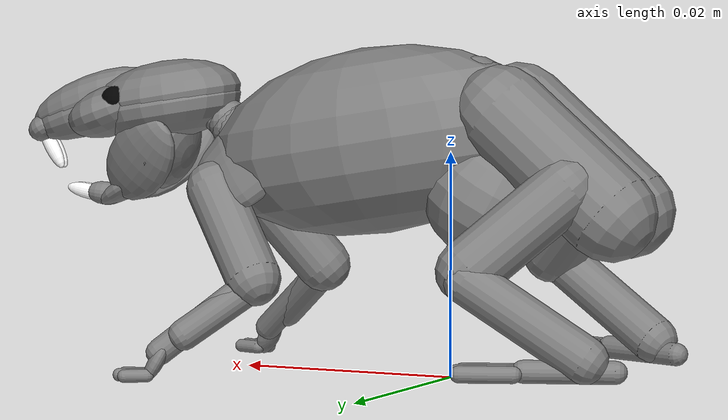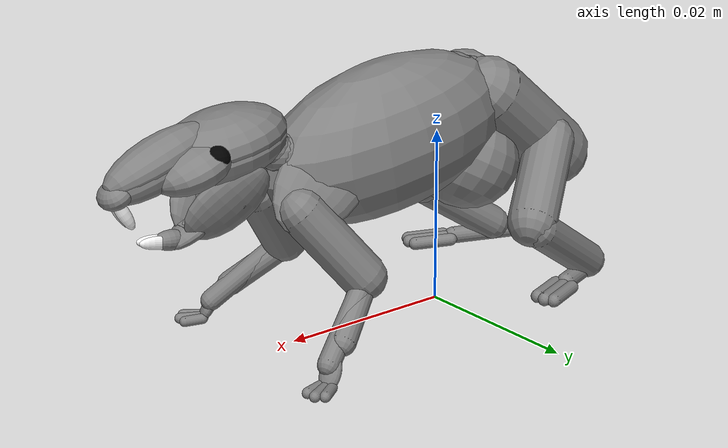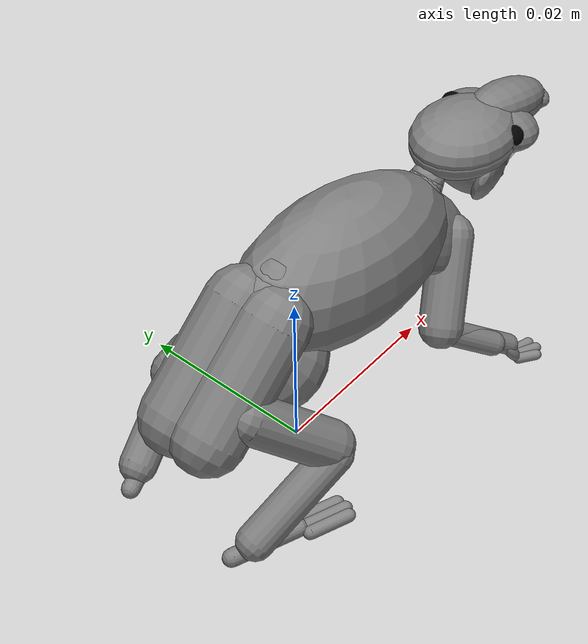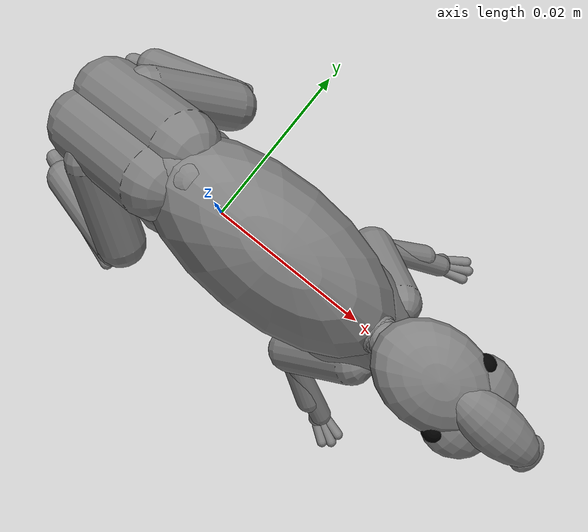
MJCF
<mujoco model="mouse">
  <compiler angle="radian"/>
  <size njmax="8000" nconmax="4000"/>
  <default>
    <!-- Scaling Factor S = 0.32 -->
    <!-- armature scales by S^5 = 0.32^5 = 0.003355 -->
    <!-- damping & stiffness scale by S^3 = 0.32^3 = 0.032768 -->
    <joint limited="true" solreflimit="0.01 1" solimplimit="0.99 0.9999 0" armature="2.01e-09" damping="3.28e-05"/>
    <geom friction="0.7 0.005 0.0001" solref="0.005 1"/>
    <site group="3" rgba="0 0 1 1"/>
    <general ctrllimited="true" ctrlrange="-1 1" gainprm="0.01"/>
    <default class="bone">
      <geom contype="0" conaffinity="0" group="0" rgba="0.5 0.5 0.5 1" density="1100.0"/>
    </default>
    <default class="collision">
      <geom contype="1" conaffinity="1" condim="1" group="2"/>
      <default class="collision_primitive">
        <geom type="capsule" group="2" rgba="0.5 0.5 0.5 1" density="500.0"/>
        <default class="collision_primitive_paw">
          <geom condim="3" priority="1" rgba="0.5 0.5 0.5 1" friction="1.5 0.005 0.0001"/>
        </default>
        <default class="nonself_collision_primitive">
          <geom conaffinity="0"/>
        </default>
      </default>
    </default>
    <default class="lumbar">
      <joint group="3" pos="0.00096 0 -0.00096" armature="3.36e-07" damping="0.000983"/>
      <general gainprm="0.15"/>
      <default class="lumbar_extend">
        <joint stiffness="0.000655" range="-0.5235987755982988 0.7853981633974483"/>
        <tendon range="-1 1"/>
        <general gainprm="0.4"/>
      </default>
      <default class="lumbar_bend">
        <joint stiffness="0.000983" range="-0.5235987755982988 0.5235987755982988"/>
        <tendon range="-1 1"/>
      </default>
      <default class="lumbar_twist">
        <joint stiffness="0.000983" range="-0.5235987755982988 0.5235987755982988"/>
        <tendon range="-1 1"/>
      </default>
    </default>
    <default class="cervical">
      <joint group="3" pos="-0.0064 0 -0.016" stiffness="0.032768" armature="3.36e-05" damping="0.032768"/>
      <default class="cervical_extend">
        <joint range="-0.4072434921320102 0.6108652381980153"/>
        <tendon range="-1 1"/>
        <general gainprm="2.5"/>
      </default>
      <default class="cervical_bend">
        <joint range="-0.6108652381980153 0.6108652381980153"/>
        <tendon range="-1 1"/>
        <general gainprm="2.5"/>
      </default>
      <default class="cervical_twist">
        <joint range="-0.6108652381980153 0.6108652381980153"/>
        <tendon range="-1 1"/>
        <general gainprm="2.5"/>
      </default>
    </default>
    <default class="atlas">
      <joint axis="0 -1 0" stiffness="6.55e-05" range="-0.08726646259971647 0.7853981633974483" damping="6.55e-05"/>
      <general gainprm="0.025"/>
    </default>
    <default class="mandible">
      <joint stiffness="6.55e-05" range="-0.296705972839036 0.2617993877991494" springref="-0.314159265359" damping="6.55e-05"/>
      <general gainprm="0.025"/>
    </default>
    <default class="caudal">
      <joint group="3" stiffness="3.28e-07" damping="6.55e-05"/>
      <general gainprm="0.005"/>
      <default class="caudal_extend">
        <joint range="-0.08726646259971647 0.08726646259971647"/>
        <tendon range="-0.05 0.05"/>
      </default>
      <default class="caudal_bend">
        <joint range="-0.08726646259971647 0.08726646259971647"/>
        <tendon range="-0.2 0.2"/>
      </default>
    </default>
    <default class="hip">
      <joint armature="3.36e-07" damping="0.000655"/>
      <general gainprm="0.2"/>
      <default class="hip_supinate">
        <joint range="-0.6981317007977318 0.5235987755982988"/>
      </default>
      <default class="hip_abduct">
        <joint range="-0.5235987755982988 1.047197551196598"/>
      </default>
      <default class="hip_extend">
        <joint range="-1.570796326794897 1.047197551196598"/>
        <general gainprm="0.3"/>
      </default>
    </default>
    <default class="knee">
      <joint range="-1.221730476396031 1.53588974175501" damping="0.000164"/>
      <general gainprm="0.2"/>
    </default>
    <default class="ankle">
      <joint range="-0.1396263401595464 1.396263401595464" damping="9.83e-05"/>
      <general gainprm="0.2"/>
    </default>
    <default class="toe">
      <joint range="0 0.8726646259971648" damping="3.28e-05"/>
      <general gainprm="0.025"/>
    </default>
    <default class="scapula">
      <joint damping="0.000164"/>
      <general gainprm="0.25"/>
      <default class="scapula_supinate">
        <joint pos="0 0.0016 0" range="-0.0174532925199433 0.1745329251994329"/>
      </default>
      <default class="scapula_abduct">
        <joint pos="0 0.0016 -0.0032" range="-0.2617993877991494 0.2617993877991494"/>
      </default>
      <default class="scapula_extend">
        <joint pos="0 0 0" range="-0.03490658503988659 0.03490658503988659"/>
        <general gainprm="0.25"/>
      </default>
    </default>
    <default class="shoulder">
      <joint range="-1.308996938995747 0.8726646259971648" damping="0.000164"/>
      <general gainprm="0.15"/>
    </default>
    <default class="shoulder_sup">
      <joint range="-0.05235987755982989 1.134464013796314" damping="0.000164"/>
      <general gainprm="0.15"/>
    </default>
    <default class="elbow">
      <joint range="-1.308996938995747 0.6981317007977318" damping="9.83e-05"/>
      <general gainprm="0.15"/>
    </default>
    <default class="wrist">
      <joint range="-0.3490658503988659 2.094395102393195" damping="6.55e-05"/>
      <general gainprm="0.05"/>
    </default>
    <default class="finger">
      <joint range="0 1.570796326794897" damping="6.55e-05"/>
      <general gainprm="0.025"/>
    </default>
    <default class="sensor">
      <site group="4"/>
    </default>
  </default>
  <visual>
    <quality shadowsize="2048"/>
    <global offwidth="1024"/>
    <global offheight="1152"/>
  </visual>
  <statistic meansize="0.00096"/>
  <asset>
  </asset>
  <worldbody>
    <camera name="close_fixed" mode="fixed" pos="0.096 -0.096 0.1024" xyaxes="1 1 0 -1 1 2"/>
    <camera name="close_profile_aligned" mode="targetbody" pos="0.096 -0.096 0.08" target="torso"/>
    <body name="torso" pos="0.009918 6.587e-08 0.020828">
      <light name="tracking_light" mode="trackcom" pos="0 0 0.96"/>
      <camera name="back" mode="trackcom" pos="-0.32 0 0.16" xyaxes="0 -1 0 1 0 2"/>
      <camera name="side" mode="trackcom" pos="0 -0.32 0.16" xyaxes="1 0 0 0 1 2"/>
      <camera name="top" mode="trackcom" fovy="100.0" pos="0 0 0.32" zaxis="0 -0.2 1"/>
      <camera name="close_profile" mode="trackcom" pos="0.096 -0.096 0.08" xyaxes="1 1 0 -1 1 2"/>
      <camera name="close_side" mode="trackcom" pos="0 -0.096 0.08" xyaxes="0 0 1 0 1 2"/>
      <camera name="examples" mode="trackcom" pos="-0.16 0 0.048" xyaxes="0 -1 0 1 0 2"/>
      <camera name="stretch_examples" mode="trackcom" pos="0.16 0 0.016" xyaxes="0 1 0 -1 0 4"/>
      <geom name="collision_torso" class="nonself_collision_primitive" type="ellipsoid" size="0.016 0.00768 0.00832" density="468.251260009" pos="-0.002624 0 0" euler="0 0.1745329251994329 0"/>
      <body name="vertebra_1" pos="-0.006137 -6.017e-08 0.00539">
        <geom name="vertebra_1_collision" class="nonself_collision_primitive" type="sphere" size="0.0032" pos="0 0 -0.0005248"/>
        <body name="vertebra_2" pos="-0.001801 8.303e-07 0.00017">
          <geom name="vertebra_2_collision" class="nonself_collision_primitive" type="sphere" size="0.0032" pos="0 0 -0.0005248"/>
          <body name="vertebra_3" pos="-0.002085 -3.331e-06 -3.029e-05">
            <geom name="vertebra_3_collision" class="nonself_collision_primitive" type="sphere" size="0.0032" pos="0 0 -0.0005248"/>
            <body name="vertebra_4" pos="-0.002168 2.798e-06 -0.000415">
              <geom name="vertebra_4_collision" class="nonself_collision_primitive" type="sphere" size="0.0032" pos="0 0 -0.0005248"/>
              <body name="vertebra_5" pos="-0.002204 -1.985e-06 -0.000799">
                <geom name="vertebra_5_collision" class="nonself_collision_primitive" type="sphere" size="0.0032" pos="0 0 -0.0005248"/>
                <body name="vertebra_6" pos="-0.001979 1.681e-06 -0.001165">
                  <geom name="vertebra_6_collision" class="nonself_collision_primitive" type="sphere" size="0.0032" pos="0 0 -0.0005248"/>
                  <joint name="vertebra_6_twist" class="lumbar_twist" axis="1 0 0"/>
                  <body name="pelvis" pos="-0.004182 1.124e-06 -0.002598">
                    <geom name="collision_pelvis_L" class="nonself_collision_primitive" size="0.00416 0.00672 0" density="1548.57736929" pos="-0.0002624 0.002099 -0.001836" euler="0 0.8726646259971648 0"/>
                    <geom name="collision_pelvis_R" class="nonself_collision_primitive" size="0.00416 0.00672 0" density="1548.57736929" pos="-0.0002624 -0.002099 -0.001836" euler="0 0.8726646259971648 0"/>
                    <geom name="collision_pelvis_gut" class="nonself_collision_primitive" type="ellipsoid" size="0.0064 0.0064 0.00576" density="1548.57736929" pos="0.00656 0 -0.005248" euler="0 -0.5235987755982988 0"/>
                    <site name="hip_L" size="0.000704" pos="-0.001539 0.003677 -0.003164"/>
                    <site name="hip_R" size="0.000704" pos="-0.001539 -0.003677 -0.003164"/>
                    <body name="upper_leg_L" pos="-0.001539 0.003677 -0.003164">
                      <joint name="hip_L_supinate" class="hip_supinate" axis="-0 -0 1"/>
                      <joint name="hip_L_abduct" class="hip_abduct" axis="1 -0 -0"/>
                      <joint name="hip_L_extend" class="hip_extend" axis="0 1 0"/>
                      <site name="knee_L" type="cylinder" size="0.000192 0.00128" pos="0.004935 0.005593 -0.008225" zaxis="0 1 0"/>
                      <geom name="upper_leg_L0_collision" class="collision_primitive" size="0.002797 0.005595" density="1561.75550556" pos="0.002752 0.003441 -0.004129" euler="0.6108652381980153 -0.6981317007977318 0"/>
                      <body name="lower_leg_L" pos="0.004935 0.005593 -0.008225">
                        <joint name="knee_L" class="knee" axis="0.5 -1 0"/>
                        <site name="ankle_L" type="cylinder" size="0.000192 0.000832" pos="-0.010336 -0.001512 -0.007059" zaxis="0 1 0"/>
                        <body name="foot_L" pos="-0.010336 -0.001512 -0.007059">
                          <joint name="ankle_L" class="ankle" axis="-0.3 1 0"/>
                          <geom name="foot_L_collision" class="collision_primitive_paw" size="0.001027 0.003962" density="2041.15978228" pos="0.002647 0.000722 -0.000722" euler="1.570796326794897 -1.221730476396031 0"/>
                          <site name="toe_L" type="cylinder" size="0.000192 0.0016" pos="0.006751 0.002436 -0.00088" zaxis="0 1 0"/>
                          <body name="toe_L" pos="0.006751 0.002436 -0.00088">
                            <joint name="toe_L" class="toe" axis="0 1 0"/>
                            <geom name="toe_L0_collision" class="collision_primitive_paw" size="0.000762 0.002321" pos="0.002718 -0.000271 0" euler="1.570796326794897 -1.221730476396031 0"/>
                            <geom name="toe_L1_collision" class="collision_primitive_paw" size="0.000762 0.002486" pos="0.002582 0.000815 0" euler="1.570796326794897 -1.221730476396031 0"/>
                            <geom name="toe_L2_collision" class="collision_primitive_paw" size="0.000762 0.002321" pos="0.002175 0.001767 0" euler="1.570796326794897 -1.221730476396031 0"/>
                            <site name="sole_L" class="sensor" type="box" size="0.00192 0.00128 0.00064" pos="0.002624 0.000787 -0.000524" euler="0 0 0.3490658503988659"/>
                          </body>
                        </body>
                        <geom name="lower_leg_L_collision" class="collision_primitive" size="0.002098 0.006154" density="1302.86687267" pos="-0.003924 3.919e-05 -0.003429" quat="0.5843939876140521 0.278581552273902 0.3900453953818352 0.6547828460754284"/>
                      </body>
                    </body>
                    <body name="upper_leg_R" pos="-0.001539 -0.003677 -0.003164">
                      <joint name="hip_R_supinate" class="hip_supinate" axis="0 0 -1"/>
                      <joint name="hip_R_abduct" class="hip_abduct" axis="-1 0 0"/>
                      <joint name="hip_R_extend" class="hip_extend" axis="0 1 0"/>
                      <site name="knee_R" type="cylinder" size="0.000192 0.00128" pos="0.004935 -0.005593 -0.008225" zaxis="0 1 0"/>
                      <geom name="upper_leg_R0_collision" class="collision_primitive" size="0.002797 0.005595" density="1561.75550556" pos="0.002752 -0.003441 -0.004129" euler="-0.6108652381980153 -0.6981317007977318 0"/>
                      <body name="lower_leg_R" pos="0.004935 -0.005593 -0.008225">
                        <joint name="knee_R" class="knee" axis="-0.5 -1 0"/>
                        <site name="ankle_R" type="cylinder" size="0.000192 0.000832" pos="-0.010336 0.001512 -0.007059" zaxis="0 1 0"/>
                        <body name="foot_R" pos="-0.010336 0.001512 -0.007059">
                          <joint name="ankle_R" class="ankle" axis="0.3 1 0"/>
                          <geom name="foot_R_collision" class="collision_primitive_paw" size="0.001027 0.003962" density="2041.15978228" pos="0.002647 -0.000722 -0.000722" euler="1.570796326794897 1.221730476396031 0"/>
                          <site name="toe_R" type="cylinder" size="0.000192 0.0016" pos="0.006751 -0.002436 -0.00088" zaxis="0 1 0"/>
                          <body name="toe_R" pos="0.006751 -0.002436 -0.00088">
                            <joint name="toe_R" class="toe" axis="0 1 0"/>
                            <geom name="toe_R0_collision" class="collision_primitive_paw" size="0.000762 0.002321" pos="0.002718 0.000271 0" euler="1.570796326794897 1.221730476396031 0"/>
                            <geom name="toe_R1_collision" class="collision_primitive_paw" size="0.000762 0.002486" pos="0.002582 -0.000815 0" euler="1.570796326794897 1.221730476396031 0"/>
                            <geom name="toe_R2_collision" class="collision_primitive_paw" size="0.000762 0.002321" pos="0.002175 -0.001767 0" euler="1.570796326794897 1.221730476396031 0"/>
                            <site name="sole_R" class="sensor" type="box" size="0.00192 0.00128 0.00064" pos="0.002624 -0.000787 -0.000524" euler="0 0 -0.3490658503988659"/>
                          </body>
                        </body>
                        <geom name="lower_leg_R_collision" class="collision_primitive" size="0.002098 0.006154" density="1302.86687267" pos="-0.003849 -5.17e-05 -0.003383" quat="0.6564315036111004 0.3901417719765998 0.2779576926818845 0.5827749135856758"/>
                      </body>
                    </body>
                    <body name="vertebra_C1" pos="-0.005052 0 -0.003802">
                      <body name="vertebra_C2" pos="-0.00124 0 -0.001352">
                        <body name="vertebra_C3" pos="-0.001095 0 -0.001364">
                          <body name="vertebra_C4" pos="-0.001046 0 -0.001413">
                            <body name="vertebra_C5" pos="-0.001016 0 -0.001462">
                              <body name="vertebra_C6" pos="-0.000998 0 -0.001568">
                                <body name="vertebra_C7" pos="-0.001029 0 -0.001806">
                                  <body name="vertebra_C8" pos="-0.001102 0 -0.001765">
                                    <body name="vertebra_C9" pos="-0.001371 0 -0.001636">
                                      <body name="vertebra_C10" pos="-0.001555 0 -0.001459">
                                        <body name="vertebra_C11" pos="-0.001719 0 -0.001396">
                                          <body name="vertebra_C12" pos="-0.001963 0 -0.001229">
                                            <body name="vertebra_C13" pos="-0.002207 0 -0.000829">
                                              <body name="vertebra_C14" pos="-0.002184 0 -0.00029">
                                                <body name="vertebra_C15" pos="-0.002088 0 -0.000100">
                                                  <body name="vertebra_C16" pos="-0.002142 0 -4.43e-05">
                                                    <body name="vertebra_C17" pos="-0.002075 0 -5.34e-06">
                                                      <body name="vertebra_C18" pos="-0.001986 0 5.84e-11">
                                                        <body name="vertebra_C19" pos="-0.001985 0 -2.62e-10">
                                                          <body name="vertebra_C20" pos="-0.001993 0 8.05e-07">
                                                            <body name="vertebra_C21" pos="-0.001957 0 -3.5e-05">
                                                            <body name="vertebra_C22" pos="-0.002082 0 -4.2e-06">
                                                            <body name="vertebra_C23" pos="-0.002045 0 5.6e-10">
                                                            <body name="vertebra_C24" pos="-0.001977 0 -3.99e-10">
                                                            <body name="vertebra_C25" pos="-0.001909 0 4.41e-11">
                                                            <body name="vertebra_C26" pos="-0.001801 0 -4.37e-10">
                                                            <body name="vertebra_C27" pos="-0.001661 0 4.46e-10">
                                                            <body name="vertebra_C28" pos="-0.001611 0 1.62e-07">
                                                            <body name="vertebra_C29" pos="-0.001527 0 -1.98e-11">
                                                            <body name="vertebra_C30" pos="-0.001281 0 -1.34e-07">
                                                            <geom name="vertebra_C30_collision" class="collision_primitive" size="0.000415 0.001971 0.001106" density="507.157357703" pos="-1.09e-17 0 0" quat="0 0.7071067811865475 0 0.7071067811865476" rgba="0 0 0 0"/>
                                                            </body>
                                                            <joint name="vertebra_C29_bend" class="caudal_bend" pos="0.001197 0 1.55e-11" axis="1.299892892972596e-08 0 -0.9999999999999999" range="-0.2617993877991494 0.2617993877991494"/>
                                                            <geom name="vertebra_C29_collision" class="collision_primitive" size="0.000414 0.001908 0.000838" density="507.157357703" pos="7.28e-18 0 0" quat="0 0.7071067811865475 0 0.7071067811865476" rgba="0 0 0 0"/>
                                                            </body>
                                                            <geom name="vertebra_C28_collision" class="collision_primitive" size="0.000414 0.001844 0.00092" density="507.157357703" pos="-7.28e-18 0 0" quat="0 0.7071067811865475 0 0.7071067811865476" rgba="0 0 0 0"/>
                                                            </body>
                                                            <joint name="vertebra_C27_extend" class="caudal_extend" pos="0.001233 0 -3.31e-10" axis="0 0.9999999999999999 0" range="-0.2617993877991494 0.2617993877991494"/>
                                                            <geom name="vertebra_C27_collision" class="collision_primitive" size="0.000441 0.001781 0.000979" density="507.157357703" pos="-7.28e-18 -1.82e-18 0" quat="0 0.7071067811865475 0 0.7071067811865476" rgba="0 0 0 0"/>
                                                            </body>
                                                            <geom name="vertebra_C26_collision" class="collision_primitive" size="0.000441 0.001717 0.000979" density="507.157357703" pos="0 0 0" quat="0 0.7071067811865475 0 0.7071067811865476" rgba="0 0 0 0"/>
                                                            </body>
                                                            <joint name="vertebra_C25_bend" class="caudal_bend" pos="0.00115 0 -2.66e-11" axis="-2.311404765380703e-08 0 -0.9999999999999998" range="-0.2617993877991494 0.2617993877991494"/>
                                                            <geom name="vertebra_C25_collision" class="collision_primitive" size="0.000441 0.001653 0.001113" density="507.157357703" pos="7.28e-18 1.82e-18 0" quat="0 0.7071067811865475 0 0.7071067811865476" rgba="0 0 0 0"/>
                                                            </body>
                                                            <geom name="vertebra_C24_collision" class="collision_primitive" size="0.000441 0.00159 0.001113" density="507.157357703" pos="0 1.82e-18 0" quat="0 0.7071067811865475 0 0.7071067811865476" rgba="0 0 0 0"/>
                                                            </body>
                                                            <joint name="vertebra_C23_extend" class="caudal_extend" pos="0.00115 0 -3.15e-10" axis="0 1 0" range="-0.2617993877991494 0.2617993877991494"/>
                                                            <geom name="vertebra_C23_collision" class="collision_primitive" size="0.000441 0.001526 0.001197" density="507.157357703" pos="0 0 0" quat="0 0.7071067811865475 0 0.7071067811865476" rgba="0 0 0 0"/>
                                                            </body>
                                                            <geom name="vertebra_C22_collision" class="collision_primitive" size="0.000441 0.001463 0.001197" density="507.157357703" pos="7.28e-18 0 0" quat="0 0.7071067811865475 0 0.7071067811865476" rgba="0 0 0 0"/>
                                                            </body>
                                                            <joint name="vertebra_C21_bend" class="caudal_bend" pos="0.001236 0 2.21e-05" axis="0.01792297618959377 0 -0.9998393705613454" range="-0.2617993877991494 0.2617993877991494"/>
                                                            <geom name="vertebra_C21_collision" class="collision_primitive" size="0.000489 0.001591 0.001233" density="507.157357703" pos="-7.28e-18 0 0" quat="0 0.7071067811865475 0 0.7071067811865476" rgba="0 0 0 0"/>
                                                            </body>
                                                            <geom name="vertebra_C20_collision" class="collision_primitive" size="0.000479 0.001656 0.00115" density="507.157357703" pos="0 9.1e-19 0" quat="0 0.7071067811865475 0 0.7071067811865476" rgba="0 0 0 0"/>
                                                          </body>
                                                          <joint name="vertebra_C19_extend" class="caudal_extend"  pos="0.001369 0 1.81e-10" axis="-0 1 0" range="-0.2617993877991494 0.2617993877991494"/>
                                                          <geom name="vertebra_C19_collision" class="collision_primitive" size="0.000522 0.001654 0.00115" density="507.157357703" pos="0 0 0" quat="0 0.7071067811865475 0 0.7071067811865476" rgba="0 0 0 0"/>
                                                        </body>
                                                        <geom name="vertebra_C18_collision" class="collision_primitive" size="0.000522 0.001572 0.00115" density="507.157357703" pos="-1.45e-17 1.13e-19 0" quat="0 0.7071067811865475 0 0.7071067811865476" rgba="0 0 0 0"/>
                                                      </body>
                                                      <joint name="vertebra_C17_bend" class="caudal_bend" pos="0.001369 0 3.52e-06" axis="0.002575715973669538 0 -0.9999966828381097" range="-0.2617993877991494 0.2617993877991494"/>
                                                      <geom name="vertebra_C17_collision" class="collision_primitive" size="0.000522 0.001489 0.00115" density="507.157357703" pos="1.45e-17 1.13e-19 0" quat="0 0.7071067811865475 0 0.7071067811865476" rgba="0 0 0 0"/>
                                                    </body>
                                                    <geom name="vertebra_C16_collision" class="collision_primitive" size="0.000601 0.001406 0.001237" density="507.157357703" pos="1.45e-17 0 0" quat="0 0.7071067811865475 0 0.7071067811865476" rgba="0 0 0 0"/>
                                                  </body>
                                                  <joint name="vertebra_C15_extend" class="caudal_extend" pos="0.001258 0 6.08e-05" axis="-0 0.9999999999999999 0" range="-0.2617993877991494 0.2617993877991494"/>
                                                  <geom name="vertebra_C15_collision" class="collision_primitive" size="0.00059 0.001323 0.001236" density="507.157357703" pos="0 -9.1e-19 0" quat="-3.048411496515643e-15 0.6991848455046811 3.117107305228081e-15 0.7149409428873096" rgba="0 0 0 0"/>
                                                </body>
                                                <geom name="vertebra_C14_collision" class="collision_primitive" size="0.00059 0.001241 0.001236" density="507.157357703" pos="-1.45e-17 -1.36e-18 0" quat="0 0.6866112770928985 0 0.7270247273434782" rgba="0 0 0 0"/>
                                              </body>
                                              <joint name="vertebra_C13_bend" class="caudal_bend" pos="0.001123 0 0.000422" axis="0.3518244833508478 0 -0.9360659874789323" range="-0.2617993877991494 0.2617993877991494"/>
                                              <geom name="vertebra_C13_collision" class="collision_primitive" size="0.000669 0.001267 0.001369" density="507.157357703" pos="-3.64e-18 0 5.69e-20" quat="1.892164903646171e-16 0.6293932092262298 -2.336181429597261e-16 0.7770869888113604" rgba="0 0 0 0"/>
                                            </body>
                                            <geom name="vertebra_C12_collision" class="collision_primitive" size="0.000778 0.001326 0.001369" density="507.157357703" pos="0 0 0" quat="1.235560731911126e-17 0.5080793265726891 -7.288463628123299e-18 0.8613102796956755" rgba="0 0 0 0"/>
                                          </body>
                                          <joint name="vertebra_C11_extend" class="caudal_extend" pos="0.000875 0 0.000711" axis="-0 0.9999999999999998 0" range="-0.2617993877991494 0.2617993877991494"/>
                                          <geom name="vertebra_C11_collision" class="collision_primitive" size="0.000799 0.001247 0.001369" density="507.157357703" pos="-7.28e-18 0 0" quat="8.0408085539503e-17 0.4349444185915732 -3.883920751947562e-17 0.9004573020060631" rgba="0 0 0 0"/>
                                        </body>
                                        <geom name="vertebra_C10_collision" class="collision_primitive" size="0.001094 0.001662 0.00126" density="507.157357703" pos="0 0 -4.55e-19" quat="6.606927199194023e-17 0.404822478038031 -2.925028864881283e-17 0.914395298147988" rgba="0 0 0 0"/>
                                      </body>
                                      <joint name="vertebra_C9_bend" class="caudal_bend" pos="0.000923 0 0.001102" axis="0.7665487416508834 0 -0.6421861308635113" range="-0.2617993877991494 0.2617993877991494"/>
                                      <geom name="vertebra_C9_collision" class="collision_primitive" size="0.001 0.001438 0.00126" density="507.157357703" pos="0 0 -9.1e-19" quat="0.9339363308955284 -2.188685129702187e-17 0.3574394072194587 5.718710691193161e-17" rgba="0 0 0 0"/>
                                    </body>
                                    <geom name="vertebra_C8_collision" class="collision_primitive" size="0.000965 0.001266 0.001259" density="507.157357703" pos="0 0 -9.1e-19" quat="0.9557562961254608 -1.801208397451436e-17 0.2941596546376485 5.852319444074877e-17" rgba="0 0 0 0"/>
                                  </body>
                                  <joint name="vertebra_C7_extend" class="caudal_extend" pos="0.00086 0 0.00151" axis="-0 0.9999999999999998 0" range="-0.2617993877991494 0.2617993877991494"/>
                                  <geom name="vertebra_C7_collision" class="collision_primitive" size="0.001042 0.001484 0.0012" density="507.157357703" pos="0 0 0" quat="-0.9587181623873691 -0.02864387142163538 -0.2629262253293439 0.1044452668751926" rgba="0 0 0 0"/>
                                </body>
                                <joint name="vertebra_C6_extend" class="caudal_extend" pos="0.000673 0 0.001057" axis="-0 0.9999999999999998 0" range="-0.2617993877991494 0.2617993877991494"/>
                                <joint name="vertebra_C6_bend" class="caudal_bend" pos="0.000673 0 0.001057" axis="0.8436498258045544 0 -0.5368938176398985" range="-0.2617993877991494 0.2617993877991494"/>
                                <geom name="vertebra_C6_collision" class="collision_primitive" size="0.001231 0.001421 0.001253" density="507.157357703" pos="0 0 -1.82e-18" quat="-0.9684724633255426 -0.0201653665451908 -0.2338356379719502 0.08351850206094803" rgba="0 0 0 0"/>
                              </body>
                              <joint name="vertebra_C5_extend" class="caudal_extend" pos="0.000643 0 0.000926" axis="-0 0.9999999999999998 0" range="-0.2617993877991494 0.2617993877991494"/>
                              <joint name="vertebra_C5_bend" class="caudal_bend" pos="0.000643 0 0.000926" axis="0.8211323953906199 0 -0.5707377587299287" range="-0.2617993877991494 0.2617993877991494"/>
                              <geom name="vertebra_C5_collision" class="collision_primitive" size="0.001454 0.001208 0.001128" density="507.157357703" pos="0 0 0" quat="0.959555122982002 -1.723817788817547e-17 0.2815208091047534 5.875580549826768e-17" rgba="0 0 0 0"/>
                            </body>
                            <joint name="vertebra_C4_extend" class="caudal_extend" pos="0.000811 0 0.001095" axis="-0 0.9999999999999996 0" range="-0.2617993877991494 0.2617993877991494"/>
                            <joint name="vertebra_C4_bend" class="caudal_bend" pos="0.000811 0 0.001095" axis="0.8035447758282259 0 -0.595244313907462" range="-0.2617993877991494 0.2617993877991494"/>
                            <geom name="vertebra_C4_collision" class="collision_primitive" size="0.002128 0.001232 0.001363" density="507.157357703" pos="0 0 -1.82e-18" quat="0.6698964656770412 0.2263597253784533 0.2263597253784533 0.6698964656770412" rgba="0 0 0 0"/>
                          </body>
                          <joint name="vertebra_C3_extend" class="caudal_extend" pos="0.0009 0 0.001121" axis="-0 0.9999999999999998 0" range="-0.2617993877991494 0.2617993877991494"/>
                          <joint name="vertebra_C3_bend" class="caudal_bend" pos="0.0009 0 0.001121" axis="0.7796571863505312 0 -0.6262065727633115" range="-0.2617993877991494 0.2617993877991494"/>
                          <geom name="vertebra_C3_collision" class="collision_primitive" size="0.002526 0.001311 0.001438" density="507.157357703" pos="0 0 1.82e-18" quat="0.658413368499565 0.2578601097127201 0.2578601097127201 0.658413368499565" rgba="0 0 0 0"/>
                        </body>
                        <joint name="vertebra_C2_extend" class="caudal_extend" pos="0.001138 0 0.001241" axis="-0 1 0" range="-0.2617993877991494 0.2617993877991494"/>
                        <joint name="vertebra_C2_bend" class="caudal_bend" pos="0.001138 0 0.001241" axis="0.7369087259505994 0 -0.6759922555901543" range="-0.2617993877991494 0.2617993877991494"/>
                        <geom name="vertebra_C2_collision" class="collision_primitive" size="0.002675 0.001121 0.001684" density="507.157357703" pos="0 0 0" quat="0.6165945006583455 0.3461375763448482 0.3461375763448482 0.6165945006583455" rgba="0 0 0 0"/>
                      </body>
                      <joint name="vertebra_C1_extend" class="caudal_extend" pos="0.001389 0 0.001045" axis="0 1 0" range="-0.2617993877991494 0.2617993877991494"/>
                      <joint name="vertebra_C1_bend" class="caudal_bend" pos="0.001389 0 0.001045" axis="0.6012684687925202 0 -0.7990470752314273" range="-0.2617993877991494 0.2617993877991494"/>
                      <geom name="vertebra_C1_collision" class="collision_primitive" size="0.003508 0.000758 0.001738" density="507.157357703" pos="0 -8.89e-22 0" quat="0.5772408551843025 0.3506607415056362 0.3240276763775721 0.662447057819841" rgba="0 0 0 0"/>
                    </body>
                  </body>
                </body>
                <joint name="vertebra_5_bend" class="lumbar_bend" axis="0 0 1"/>
              </body>
              <joint name="vertebra_4_extend" class="lumbar_extend" axis="0 1 0"/>
            </body>
            <joint name="vertebra_3_twist" class="lumbar_twist" axis="1 0 0"/>
          </body>
          <joint name="vertebra_2_bend" class="lumbar_bend" axis="0 0 1"/>
        </body>
        <joint name="vertebra_1_extend" class="lumbar_extend" axis="0 1 0"/>
      </body>
      <body name="vertebra_cervical_5" pos="0.008866 3.784e-06 -0.00032">
        <geom name="vertebra_cervical_5_collision" class="nonself_collision_primitive" type="sphere" size="0.00288" density="300.0"/>
        <body name="vertebra_cervical_4" pos="0.00077 -3.84e-06 0.000259">
          <geom name="vertebra_cervical_4_collision" class="nonself_collision_primitive" type="sphere" size="0.002688" density="300.0"/>
          <body name="vertebra_cervical_3" pos="0.000688 3.86e-11 0.000301">
            <geom name="vertebra_cervical_3_collision" class="nonself_collision_primitive" type="sphere" size="0.002496" density="300.0"/>
            <body name="vertebra_cervical_2" pos="0.000607 4.1e-11 0.000279">
              <geom name="vertebra_cervical_2_collision" class="nonself_collision_primitive" type="sphere" size="0.002303" density="300.0"/>
              <body name="vertebra_cervical_1" pos="0.000568 1.44e-10 0.000299">
                <geom name="vertebra_cervical_1_collision" class="nonself_collision_primitive" type="sphere" size="0.002111" density="300.0"/>
                <body name="vertebra_axis" pos="0.000602 -5.62e-07 0.000545">
                  <geom name="vertebra_axis_collision" class="nonself_collision_primitive" type="sphere" size="0.001919" density="300.0"/>
                  <body name="vertebra_atlant" pos="0.000784 5.62e-07 0.000438">
                    <geom name="vertebra_atlant_collision" class="nonself_collision_primitive" type="sphere" size="0.001727" density="300.0"/>
                    <joint name="vertebra_atlant_extend" class="cervical_extend" pos="8.77e-06 -1.58e-08 -6.76e-05" axis="0 1 0"/>
                    <body name="skull" pos="0.008305 1.34e-09 0.000566">
                      <geom name="skull_0_collision" class="collision_primitive" type="ellipsoid" size="0.00707 0.005342 0.0032" density="703.10773841" pos="-0.002898 0 0.000262" euler="0 0.1745329251994329 0"/>
                      <geom name="skull_0b_collision" class="collision_primitive" type="ellipsoid" size="0.00707 0.005342 0.0032" density="1.40621547682" pos="-0.002898 0 0.001049" euler="0 0.1745329251994329 0"/>
                      <geom name="skull_F_collision" class="collision_primitive" type="ellipsoid" size="0.002297 0.002849 0.0064" density="703.10773841" pos="0.004638 0 -0.000262" euler="0 1.919862177193763 0"/>
                      <geom name="skull_Fb_collision" class="collision_primitive" type="ellipsoid" size="0.002297 0.002849 0.0064" density="1.40621547682" pos="0.004638 0 0.000524" euler="0 1.919862177193763 0"/>
                      <geom name="skull_L_collision" class="collision_primitive" type="ellipsoid" size="0.002297 0.004274 0.00448" density="703.10773841" pos="0.001739 0.00146 -0.000262" euler="0 1.919862177193763 0"/>
                      <geom name="eye_L_collision" class="collision_primitive" type="sphere" group="1" size="0.00128 0.00128 0.00128" rgba="0 0 0 1" pos="0.000353 0.004096 0.0008"/>
                      <geom name="skull_R_collision" class="collision_primitive" type="ellipsoid" size="0.002297 0.004274 0.00448" density="703.10773841" pos="0.001739 -0.00146 -0.000262" euler="0 1.919862177193763 0"/>
                      <geom name="eye_R_collision" class="collision_primitive" type="sphere" group="1" size="0.00128 0.00128 0.00128" rgba="0 0 0 1" pos="0.000353 -0.004096 0.0008"/>
                      <geom name="skull_P0_collision" class="collision_primitive" type="box" size="0.002121 0.001994 0.000512" density="703.10773841" pos="0.000579 0 -0.001836"/>
                      <geom name="skull_P1_collision" class="collision_primitive" type="box" size="0.001414 0.001282 0.000384" density="703.10773841" pos="0.002029 0 -0.001836"/>
                      <geom name="skull_P2_collision" class="collision_primitive" type="box" size="0.000353 0.001068 0.000256" density="703.10773841" pos="0.002753 0 -0.001836"/>
                      <geom name="skull_T0_collision" class="collision_primitive" type="ellipsoid" size="0.001767 0.002137 0.00128" density="703.10773841" pos="0.009566 0 -0.002099" euler="0 0.5235987755982988 0"/>
                      <geom name="skull_T1_collision" class="collision_primitive" type="ellipsoid" group="1" size="0.000707 0.000534 0.00224" rgba="1 1 1 1" density="703.10773841" pos="0.008986 0.000292 -0.003936" euler="0 0.5235987755982988 0"/>
                      <geom name="skull_T2_collision" class="collision_primitive" type="ellipsoid" group="1" size="0.000707 0.000534 0.00224" rgba="1 1 1 1" density="703.10773841" pos="0.008986 -0.000292 -0.003936" euler="0 0.5235987755982988 0"/>
                      <joint name="atlas" class="atlas" pos="-0.009099 0 0"/>
                      <site name="head" class="sensor" type="box" size="0.00064 0.00064 0.00064"/>
                      <camera name="egocentric" fovy="80.0" pos="0.0032 0 0.0016" euler="0 -1.570796326794897 -1.570796326794897"/>
                      <body name="jaw" pos="0.000144 -5.08e-09 -0.005248" euler="0 0.2617993877991494 0">
                        <geom name="jaw_back_collision" class="collision_primitive" type="ellipsoid" size="0.003888 0.004274 0.00224" density="314.057274977" pos="-0.003478 0 0.000656" euler="0 0.9599310885968813 0"/>
                        <geom name="jaw_F_collision" class="collision_primitive" type="ellipsoid" size="0.00106 0.002137 0.00384" density="314.057274977" pos="0.000869 0 -0.001574" euler="0 1.832595714594046 0"/>
                        <geom name="jaw_L_collision" class="collision_primitive" type="ellipsoid" size="0.003181 0.001246 0.00512" density="314.057274977" pos="-0.001739 0.002628 0.000262" euler="-0.6981317007977318 2.181661564992912 0.5235987755982988"/>
                        <geom name="jaw_R_collision" class="collision_primitive" type="ellipsoid" size="0.003181 0.001246 0.00512" density="314.057274977" pos="-0.001739 -0.002628 0.000262" euler="0.6981317007977318 2.181661564992912 -0.5235987755982988"/>
                        <geom name="jaw_T0_collision" class="collision_primitive" type="ellipsoid" size="0.00106 0.001068 0.00192" density="314.057274977" pos="0.004058 0 -0.001836" euler="0 1.221730476396031 0"/>
                        <geom name="jaw_T1_collision" class="collision_primitive" type="ellipsoid" group="1" size="0.000707 0.000427 0.00224" rgba="1 1 1 1" density="314.057274977" pos="0.005507 0.000292 -0.001312" euler="0 1.134464013796314 0"/>
                        <geom name="jaw_T2_collision" class="collision_primitive" type="ellipsoid" group="1" size="0.000707 0.000427 0.00224" rgba="1 1 1 1" density="314.057274977" pos="0.005507 -0.000292 -0.001312" euler="0 1.134464013796314 0"/>
                        <geom name="jaw_P0_collision" class="collision_primitive" type="box" size="0.002121 0.001994 0.000512" density="314.057274977" pos="-0.000869 0 0.000262" euler="0 0.9599310885968813 0"/>
                        <geom name="jaw_P1_collision" class="collision_primitive" type="box" size="0.001414 0.001567 0.00032" density="314.057274977" pos="0 0 -0.000314" euler="0 0.5235987755982988 0"/>
                        <geom name="jaw_P2_collision" class="collision_primitive" type="box" size="0.001414 0.001282 0.00032" density="314.057274977" pos="0.000869 0 -0.000734" euler="0 0.4363323129985824 0"/>
                        <geom name="jaw_P3_collision" class="collision_primitive" type="box" size="0.00106 0.000926 0.000192" density="314.057274977" pos="0.001507 0 -0.000918" euler="0 0.2617993877991494 0"/>
                        <joint name="mandible" class="mandible" pos="-0.00592 0 0.00128" axis="0 1 0"/>
                      </body>
                    </body>
                  </body>
                  <joint name="vertebra_axis_twist" class="cervical_twist" pos="3.18e-05 2.34e-08 -8.56e-05" axis="0.7409845944832573 -0.0006915153935393208 0.6715216694529994"/>
                </body>
                <joint name="vertebra_cervical_1_bend" class="cervical_bend" pos="8.79e-06 -7.09e-12 -8.44e-05" axis="-0.4655674978646318 0 0.885012375581277"/>
              </body>
              <joint name="vertebra_cervical_2_extend" class="cervical_extend" pos="4.14e-06 -1.85e-12 -8.12e-05" axis="0 1 0"/>
            </body>
            <joint name="vertebra_cervical_3_twist" class="cervical_twist" pos="2.62e-06 -1.55e-12 -8.14e-05" axis="0.9160353567291684 5.146827584715309e-08 0.4010975258239107"/>
          </body>
          <joint name="vertebra_cervical_4_bend" class="cervical_bend" pos="-4.92e-06 1.53e-07 -8.72e-05" axis="-0.3185475796000196 0 0.9478950836057671"/>
        </body>
        <joint name="vertebra_cervical_5_extend" class="cervical_extend" pos="-6.19e-05 -1.27e-07 -7.34e-05" axis="0 1 0"/>
      </body>
      <body name="scapula_L" pos="0.002099 0.000524 0.003673">
        <joint name="scapula_L_supinate" class="scapula_supinate" pos="0 -0.0016 0" axis="-0 -0 1"/>
        <joint name="scapula_L_abduct" class="scapula_abduct" pos="0 -0.0016 -0.0032" axis="1 -0 -0"/>
        <joint name="scapula_L_extend" class="scapula_extend" pos="0 0 0" axis="0.3 1 0"/>
        <site name="shoulder_L" size="0.00064" pos="0.009184 0.003148 -0.008134"/>
        <body name="upper_arm_L" pos="0.009184 0.003148 -0.008134">
          <joint name="shoulder_L" class="shoulder" axis="0 1 0"/>
          <joint name="shoulder_sup_L" class="shoulder_sup" axis="0 0 -1"/>
          <site name="elbow_L" type="cylinder" size="0.000192 0.00128" pos="-0.005097 0.003313 -0.007137" zaxis="0 1 0.2"/>
          <body name="lower_arm_L" pos="-0.005097 0.003313 -0.007137">
            <joint name="elbow_L" class="elbow" axis="0 1 0.2"/>
            <site name="wrist_L" type="cylinder" size="0.000256 0.001088" pos="0.006912 0.004032 -0.006336" zaxis="0 1 0"/>
            <body name="hand_L" pos="0.006912 0.004032 -0.006336">
              <joint name="wrist_L" class="wrist" axis="0.6 -1 0"/>
              <geom name="hand_L_collision" class="collision_primitive_paw" type="ellipsoid" size="0.00207 0.001183 0.000709" density="2531.78122831" pos="0.000485 0.000242 -0.001455" euler="-0.6981317007977318 0.8726646259971648 0.7853981633974483"/>
              <site name="finger_L" type="cylinder" size="0.000192 0.0016" pos="0.00097 0.000485 -0.002667" zaxis="-0.2 1 0"/>
              <body name="finger_L" pos="0.00097 0.000485 -0.002667">
                <joint name="finger_L" class="finger" axis="-0.5 1 0"/>
                <geom name="finger_L0_collision" class="collision_primitive_paw" size="0.000591 0.001035" pos="0.001576 -0.000242 0" euler="1.570796326794897 -1.308996938995747 0"/>
                <geom name="finger_L1_collision" class="collision_primitive_paw" size="0.000591 0.001183" pos="0.001455 0.000606 0" euler="1.570796326794897 -1.099557428756428 0"/>
                <geom name="finger_L2_collision" class="collision_primitive_paw" size="0.000591 0.001035" pos="0.000848 0.001212 0" euler="1.570796326794897 -0.9599310885968813 0"/>
                <site name="palm_L" class="sensor" type="box" size="0.00128 0.00128 0.00064" pos="0.001574 0.000787 -0.000524" euler="0 0 0.4886921905584123"/>
              </body>
            </body>
            <geom name="radius_L_collision" class="collision_primitive" size="0.001194 0.005093" pos="0.003681 0.002192 -0.003912" quat="0.02376493230846292 0.7917721441518218 0.4232293467931716 0.4397829234413568"/>
            <geom name="ulna_L_collision" class="collision_primitive" size="0.001405 0.004215" pos="0.002159 0.001597 -0.003036" quat="0.01282244452041863 0.7446249872782607 0.4776065607195328 0.4661128472752391"/>
          </body>
          <geom name="humerus_L_collision" class="collision_primitive" size="0.002486 0.004973" pos="-0.002477 0.001852 -0.003834" quat="0.472560999180163 0.3450082805420177 0.0007016050154913519 0.8109592444517103"/>
        </body>
        <geom name="scapula_L_collision" class="nonself_collision_primitive" type="ellipsoid" size="0.001601 0.004682 0.007779" density="513.564612303" pos="0.005622 0.002763 -0.004873" quat="0.1844194062696375 0.7692222855376651 0.4740322845517004 0.3867556738123709"/>
      </body>
      <body name="scapula_R" pos="0.002099 -0.000524 0.003673">
        <joint name="scapula_R_supinate" class="scapula_supinate" pos="0 0.0016 0" axis="0 0 -1"/>
        <joint name="scapula_R_abduct" class="scapula_abduct" pos="0 0.0016 -0.0032" axis="-1 0 0"/>
        <joint name="scapula_R_extend" class="scapula_extend" pos="0 0 0" axis="-0.3 1 0"/>
        <site name="shoulder_R" size="0.00064" pos="0.009184 -0.003148 -0.008134"/>
        <body name="upper_arm_R" pos="0.009184 -0.003148 -0.008134">
          <joint name="shoulder_R" class="shoulder" axis="0 1 0"/>
          <joint name="shoulder_sup_R" class="shoulder_sup" axis="-0 -0 1"/>
          <site name="elbow_R" type="cylinder" size="0.000192 0.00128" pos="-0.005097 -0.003313 -0.007137" zaxis="0 1 -0.2"/>
          <body name="lower_arm_R" pos="-0.005097 -0.003313 -0.007137">
            <joint name="elbow_R" class="elbow" axis="0 1 -0.2"/>
            <site name="wrist_R" type="cylinder" size="0.000256 0.001088" pos="0.006912 -0.004032 -0.006336" zaxis="0 1 0"/>
            <body name="hand_R" pos="0.006912 -0.004032 -0.006336">
              <joint name="wrist_R" class="wrist" axis="-0.6 -1 0"/>
              <geom name="hand_R_collision" class="collision_primitive_paw" type="ellipsoid" size="0.00207 0.001183 0.000709" density="2531.78122831" pos="0.000485 -0.000242 -0.001455" euler="0.6981317007977318 0.8726646259971648 -0.7853981633974483"/>
              <site name="finger_R" type="cylinder" size="0.000192 0.0016" pos="0.00097 -0.000485 -0.002667" zaxis="0.2 1 0"/>
              <body name="finger_R" pos="0.00097 -0.000485 -0.002667">
                <joint name="finger_R" class="finger" axis="0.5 1 0"/>
                <geom name="finger_R0_collision" class="collision_primitive_paw" size="0.000591 0.001035" pos="0.001576 0.000242 0" euler="1.570796326794897 1.308996938995747 0"/>
                <geom name="finger_R1_collision" class="collision_primitive_paw" size="0.000591 0.001183" pos="0.001455 -0.000606 0" euler="1.570796326794897 1.099557428756428 0"/>
                <geom name="finger_R2_collision" class="collision_primitive_paw" size="0.000591 0.001035" pos="0.000848 -0.001212 0" euler="1.570796326794897 0.9599310885968813 0"/>
                <site name="palm_R" class="sensor" type="box" size="0.00128 0.00128 0.00064" pos="0.001574 -0.000787 -0.000524" euler="0 0 -0.4886921905584123"/>
              </body>
            </body>
            <geom name="radius_R_collision" class="collision_primitive" size="0.001194 0.005093" pos="0.003681 -0.002192 -0.003912" quat="0.4397828585901176 0.423230473256099 0.7917715587074765 0.02376557635859348"/>
            <geom name="ulna_R_collision" class="collision_primitive" size="0.001405 0.004215" pos="0.002159 -0.001597 -0.003036" quat="0.4661127828257156 0.4776067795325061 0.7446248854693838 0.01282254930824632"/>
          </body>
          <geom name="humerus_R_collision" class="collision_primitive" size="0.002486 0.004973" pos="-0.002477 -0.001852 -0.003834" quat="0.8109593935310486 0.0007013948082913995 0.3450082795040448 0.4725607444157158"/>
        </body>
        <geom name="scapula_R_collision" class="nonself_collision_primitive" type="ellipsoid" size="0.001601 0.004682 0.007779" density="513.564646393" pos="0.005622 -0.002763 -0.004873" quat="0.3867556972129688 0.4740321312040688 0.7692223496423682 0.1844194839763772"/>
      </body>
    </body>
  </worldbody>
  <contact>
    <exclude name="pelvis:vertebra_C2" body1="pelvis" body2="vertebra_C2"/>
    <exclude name="pelvis:vertebra_C3" body1="pelvis" body2="vertebra_C3"/>
    <exclude name="pelvis:vertebra_C4" body1="pelvis" body2="vertebra_C4"/>
    <exclude name="vertebra_C1:vertebra_C3" body1="vertebra_C1" body2="vertebra_C3"/>
    <exclude name="vertebra_C1:vertebra_C4" body1="vertebra_C1" body2="vertebra_C4"/>
    <exclude name="vertebra_C2:vertebra_C4" body1="vertebra_C2" body2="vertebra_C4"/>
    <exclude name="vertebra_C3:vertebra_C5" body1="vertebra_C3" body2="vertebra_C5"/>
    <exclude name="vertebra_C4:vertebra_C6" body1="vertebra_C4" body2="vertebra_C6"/>
    <exclude name="vertebra_C5:vertebra_C7" body1="vertebra_C5" body2="vertebra_C7"/>
    <exclude name="vertebra_axis:skull" body1="vertebra_axis" body2="skull"/>
    <exclude name="pelvis:vertebra_C5" body1="pelvis" body2="vertebra_C5"/>
    <exclude name="pelvis:vertebra_C6" body1="pelvis" body2="vertebra_C6"/>
    <exclude name="vertebra_C2:vertebra_C5" body1="vertebra_C2" body2="vertebra_C5"/>
    <exclude name="vertebra_C3:vertebra_C6" body1="vertebra_C3" body2="vertebra_C6"/>
    <exclude name="vertebra_C4:vertebra_C7" body1="vertebra_C4" body2="vertebra_C7"/>
    <exclude name="upper_arm_L:upper_arm_R" body1="upper_arm_L" body2="upper_arm_R"/>
    <exclude name="upper_leg_L:vertebra_C1" body1="upper_leg_L" body2="vertebra_C1"/>
    <exclude name="upper_leg_L:vertebra_C2" body1="upper_leg_L" body2="vertebra_C2"/>
    <exclude name="upper_leg_R:vertebra_C1" body1="upper_leg_R" body2="vertebra_C1"/>
    <exclude name="upper_leg_R:vertebra_C2" body1="upper_leg_R" body2="vertebra_C2"/>
    <exclude name="vertebra_cervical_1:skull" body1="vertebra_cervical_1" body2="skull"/>
    <exclude name="vertebra_cervical_2:skull" body1="vertebra_cervical_2" body2="skull"/>
    <exclude name="upper_arm_L:torso" body1="upper_arm_L" body2="torso"/>
    <exclude name="upper_arm_R:torso" body1="upper_arm_R" body2="torso"/>
    <exclude name="lower_leg_L:pelvis" body1="lower_leg_L" body2="pelvis"/>
    <exclude name="lower_leg_R:pelvis" body1="lower_leg_R" body2="pelvis"/>
    </contact>
  <tendon>
    <fixed name="lumbar_extend" class="lumbar_extend">
      <joint joint="vertebra_1_extend" coef="0.604983465832"/>
      <joint joint="vertebra_4_extend" coef="0.395016534168"/>
    </fixed>
    <fixed name="lumbar_bend" class="lumbar_bend">
      <joint joint="vertebra_2_bend" coef="0.658212326553"/>
      <joint joint="vertebra_5_bend" coef="0.341787673447"/>
    </fixed>
    <fixed name="lumbar_twist" class="lumbar_twist">
      <joint joint="vertebra_3_twist" coef="0.570669983621"/>
      <joint joint="vertebra_6_twist" coef="0.429330016379"/>
    </fixed>
    <fixed name="cervical_extend" class="cervical_extend">
      <joint joint="vertebra_cervical_5_extend" coef="0.341713547174"/>
      <joint joint="vertebra_cervical_2_extend" coef="0.332408292936"/>
      <joint joint="vertebra_atlant_extend" coef="0.32587815989"/>
    </fixed>
    <fixed name="cervical_bend" class="cervical_bend">
      <joint joint="vertebra_cervical_4_bend" coef="0.50743949691"/>
      <joint joint="vertebra_cervical_1_bend" coef="0.49256050309"/>
    </fixed>
    <fixed name="cervical_twist" class="cervical_twist">
      <joint joint="vertebra_cervical_3_twist" coef="0.496142185731"/>
      <joint joint="vertebra_axis_twist" coef="0.503857814269"/>
    </fixed>
    <fixed name="caudal_extend" class="caudal_extend">
      <joint joint="vertebra_C1_extend" coef="0.29007246307"/>
      <joint joint="vertebra_C2_extend" coef="0.207669040031"/>
      <joint joint="vertebra_C3_extend" coef="0.151635169821"/>
      <joint joint="vertebra_C4_extend" coef="0.115426643422"/>
      <joint joint="vertebra_C5_extend" coef="0.0875497823386"/>
      <joint joint="vertebra_C6_extend" coef="0.0692562920379"/>
      <joint joint="vertebra_C7_extend" coef="0.0558691633464"/>
      <joint joint="vertebra_C11_extend" coef="0.0175306632713"/>
      <joint joint="vertebra_C15_extend" coef="0.00414417378836"/>
      <joint joint="vertebra_C19_extend" coef="0.00074642278889"/>
      <joint joint="vertebra_C23_extend" coef="8.5912797067e-05"/>
      <joint joint="vertebra_C27_extend" coef="1.42732873368e-05"/>
    </fixed>
    <fixed name="caudal_bend" class="caudal_bend">
      <joint joint="vertebra_C1_bend" coef="0.370792881126"/>
      <joint joint="vertebra_C2_bend" coef="0.233517805262"/>
      <joint joint="vertebra_C3_bend" coef="0.150894350178"/>
      <joint joint="vertebra_C4_bend" coef="0.101885012096"/>
      <joint joint="vertebra_C5_bend" coef="0.0671743532429"/>
      <joint joint="vertebra_C6_bend" coef="0.0439561223709"/>
      <joint joint="vertebra_C9_bend" coef="0.0188199119629"/>
      <joint joint="vertebra_C13_bend" coef="0.00999889819861"/>
      <joint joint="vertebra_C17_bend" coef="0.00252642968052"/>
      <joint joint="vertebra_C21_bend" coef="0.000378783618491"/>
      <joint joint="vertebra_C25_bend" coef="4.10656566522e-05"/>
      <joint joint="vertebra_C29_bend" coef="1.43866075466e-05"/>
    </fixed>
  </tendon>
  <actuator>
    <!-- forcerange, gainprm, biasprm scaled by S^3 = 0.032768 -->
    <general name="lumbar_extend" forcerange="-0.655 0.655" tendon="lumbar_extend" dyntype="filter" biastype="affine" dynprm="0.04" gainprm="0.4289" biasprm="0.0857 -0.655"/>
    <general name="lumbar_bend" forcerange="-0.655 0.655" tendon="lumbar_bend" dyntype="filter" biastype="affine" dynprm="0.04" gainprm="0.3431" biasprm="0 -0.655"/>
    <general name="lumbar_twist" forcerange="-0.655 0.655" tendon="lumbar_twist" dyntype="filter" biastype="affine" dynprm="0.04" gainprm="0.3431" biasprm="0 -0.655"/>
    <general name="cervical_extend" forcerange="-0.655 0.655" tendon="cervical_extend" dyntype="filter" biastype="affine" dynprm="0.04" gainprm="0.3336" biasprm="0.0667 -0.655"/>
    <general name="cervical_bend" forcerange="-0.655 0.655" tendon="cervical_bend" dyntype="filter" biastype="affine" dynprm="0.04" gainprm="0.4" biasprm="0 -0.655"/>
    <general name="cervical_twist" forcerange="-0.655 0.655" tendon="cervical_twist" dyntype="filter" biastype="affine" dynprm="0.04" gainprm="0.4" biasprm="0 -0.655"/>
    <general name="caudal_extend" forcerange="-0.00327 0.00327" tendon="caudal_extend" dyntype="filter" biastype="affine" dynprm="0.04" gainprm="0.000857" biasprm="0 -0.00327"/>
    <general name="caudal_bend" forcerange="-0.00327 0.00327" tendon="caudal_bend" dyntype="filter" biastype="affine" dynprm="0.04" gainprm="0.000857" biasprm="0 -0.00327"/>
    <general name="hip_L_supinate" forcerange="-0.00655 0.00655" joint="hip_L_supinate" dyntype="filter" biastype="affine" dynprm="0.04" gainprm="0.008" biasprm="-0.00114 -0.0131"/>
    <general name="hip_L_abduct" forcerange="-0.00655 0.00655" joint="hip_L_abduct" dyntype="filter" biastype="affine" dynprm="0.04" gainprm="0.0103" biasprm="0.00343 -0.0131"/>
    <general name="hip_L_extend" forcerange="-0.00983 0.00983" joint="hip_L_extend" dyntype="filter" biastype="affine" dynprm="0.04" gainprm="0.0257" biasprm="-0.00514 -0.0196"/>
    <general name="knee_L" forcerange="-0.00655 0.00655" joint="knee_L" dyntype="filter" biastype="affine" dynprm="0.04" gainprm="0.018" biasprm="0.00205 -0.0131"/>
    <general name="ankle_L" forcerange="-0.00655 0.00655" joint="ankle_L" dyntype="filter" biastype="affine" dynprm="0.04" gainprm="0.01" biasprm="0.00823 -0.0131"/>
    <general name="toe_L" forcerange="-0.000819 0.000819" joint="toe_L" dyntype="filter" biastype="affine" dynprm="0.04" gainprm="0.000715" biasprm="0.000715 -0.00163"/>
    <general name="hip_R_supinate" forcerange="-0.00655 0.00655" joint="hip_R_supinate" dyntype="filter" biastype="affine" dynprm="0.04" gainprm="0.008" biasprm="-0.00114 -0.0131"/>
    <general name="hip_R_abduct" forcerange="-0.00655 0.00655" joint="hip_R_abduct" dyntype="filter" biastype="affine" dynprm="0.04" gainprm="0.0103" biasprm="0.00343 -0.0131"/>
    <general name="hip_R_extend" forcerange="-0.00983 0.00983" joint="hip_R_extend" dyntype="filter" biastype="affine" dynprm="0.04" gainprm="0.0257" biasprm="-0.00514 -0.0196"/>
    <general name="knee_R" forcerange="-0.00655 0.00655" joint="knee_R" dyntype="filter" biastype="affine" dynprm="0.04" gainprm="0.018" biasprm="0.00205 -0.0131"/>
    <general name="ankle_R" forcerange="-0.00655 0.00655" joint="ankle_R" dyntype="filter" biastype="affine" dynprm="0.04" gainprm="0.01" biasprm="0.00823 -0.0131"/>
    <general name="toe_R" forcerange="-0.000819 0.000819" joint="toe_R" dyntype="filter" biastype="affine" dynprm="0.04" gainprm="0.000715" biasprm="0.000715 -0.00163"/>
    <general name="atlas" forcerange="-0.000819 0.000819" joint="atlas" dyntype="filter" biastype="affine" dynprm="0.04" gainprm="0.000715" biasprm="0.00057 -0.00163"/>
    <general name="mandible" forcerange="-0.000819 0.000819" joint="mandible" dyntype="filter" biastype="affine" dynprm="0.04" gainprm="0.000457" biasprm="-2.86e-05 -0.00163"/>
    <general name="scapula_L_supinate" forcerange="-0.00819 0.00819" joint="scapula_L_supinate" dyntype="filter" biastype="affine" dynprm="0.04" gainprm="0.00157" biasprm="0.00128 -0.0163"/>
    <general name="scapula_L_abduct" forcerange="-0.00819 0.00819" joint="scapula_L_abduct" dyntype="filter" biastype="affine" dynprm="0.04" gainprm="0.00428" biasprm="0 -0.0163"/>
    <general name="scapula_L_extend" forcerange="-0.00819 0.00819" joint="scapula_L_extend" dyntype="filter" biastype="affine" dynprm="0.04" gainprm="0.00057" biasprm="0 -0.0163"/>
    <general name="shoulder_L" forcerange="-0.00491 0.00491" joint="shoulder_L" dyntype="filter" biastype="affine" dynprm="0.04" gainprm="0.0107" biasprm="-0.00214 -0.0098"/>
    <general name="shoulder_sup_L" forcerange="-0.00491 0.00491" joint="shoulder_sup_L" dyntype="filter" biastype="affine" dynprm="0.04" gainprm="0.00583" biasprm="0.00532 -0.0098"/>
    <general name="elbow_L" forcerange="-0.00491 0.00491" joint="elbow_L" dyntype="filter" biastype="affine" dynprm="0.04" gainprm="0.00986" biasprm="-0.00299 -0.0098"/>
    <general name="wrist_L" forcerange="-0.00163 0.00163" joint="wrist_L" dyntype="filter" biastype="affine" dynprm="0.04" gainprm="0.004" biasprm="0.00286 -0.00327"/>
    <general name="finger_L" forcerange="-0.000819 0.000819" joint="finger_L" dyntype="filter" biastype="affine" dynprm="0.04" gainprm="0.00128" biasprm="0.00128 -0.00163"/>
    <general name="scapula_R_supinate" forcerange="-0.00819 0.00819" joint="scapula_R_supinate" dyntype="filter" biastype="affine" dynprm="0.04" gainprm="0.00157" biasprm="0.00128 -0.0163"/>
    <general name="scapula_R_abduct" forcerange="-0.00819 0.00819" joint="scapula_R_abduct" dyntype="filter" biastype="affine" dynprm="0.04" gainprm="0.00428" biasprm="0 -0.0163"/>
    <general name="scapula_R_extend" forcerange="-0.00819 0.00819" joint="scapula_R_extend" dyntype="filter" biastype="affine" dynprm="0.04" gainprm="0.00057" biasprm="0 -0.0163"/>
    <general name="shoulder_R" forcerange="-0.00491 0.00491" joint="shoulder_R" dyntype="filter" biastype="affine" dynprm="0.04" gainprm="0.0107" biasprm="-0.00214 -0.0098"/>
    <general name="shoulder_sup_R" forcerange="-0.00491 0.00491" joint="shoulder_sup_R" dyntype="filter" biastype="affine" dynprm="0.04" gainprm="0.00583" biasprm="0.00532 -0.0098"/>
    <general name="elbow_R" forcerange="-0.00491 0.00491" joint="elbow_R" dyntype="filter" biastype="affine" dynprm="0.04" gainprm="0.00986" biasprm="-0.00299 -0.0098"/>
    <general name="wrist_R" forcerange="-0.00163 0.00163" joint="wrist_R" dyntype="filter" biastype="affine" dynprm="0.04" gainprm="0.004" biasprm="0.00286 -0.00327"/>
    <general name="finger_R" forcerange="-0.000819 0.000819" joint="finger_R" dyntype="filter" biastype="affine" dynprm="0.04" gainprm="0.00128" biasprm="0.00128 -0.00163"/>
  </actuator>
  <sensor>
    <accelerometer name="accelerometer" site="head"/>
    <velocimeter name="velocimeter" site="head"/>
    <gyro name="gyro" site="head"/>
    <touch name="palm_L" site="palm_L"/>
    <touch name="palm_R" site="palm_R"/>
    <touch name="sole_L" site="sole_L"/>
    <touch name="sole_R" site="sole_R"/>
    <subtreelinvel name="torso" body="torso"/>
  </sensor>
  <compiler meshdir="./"/>
</mujoco>
